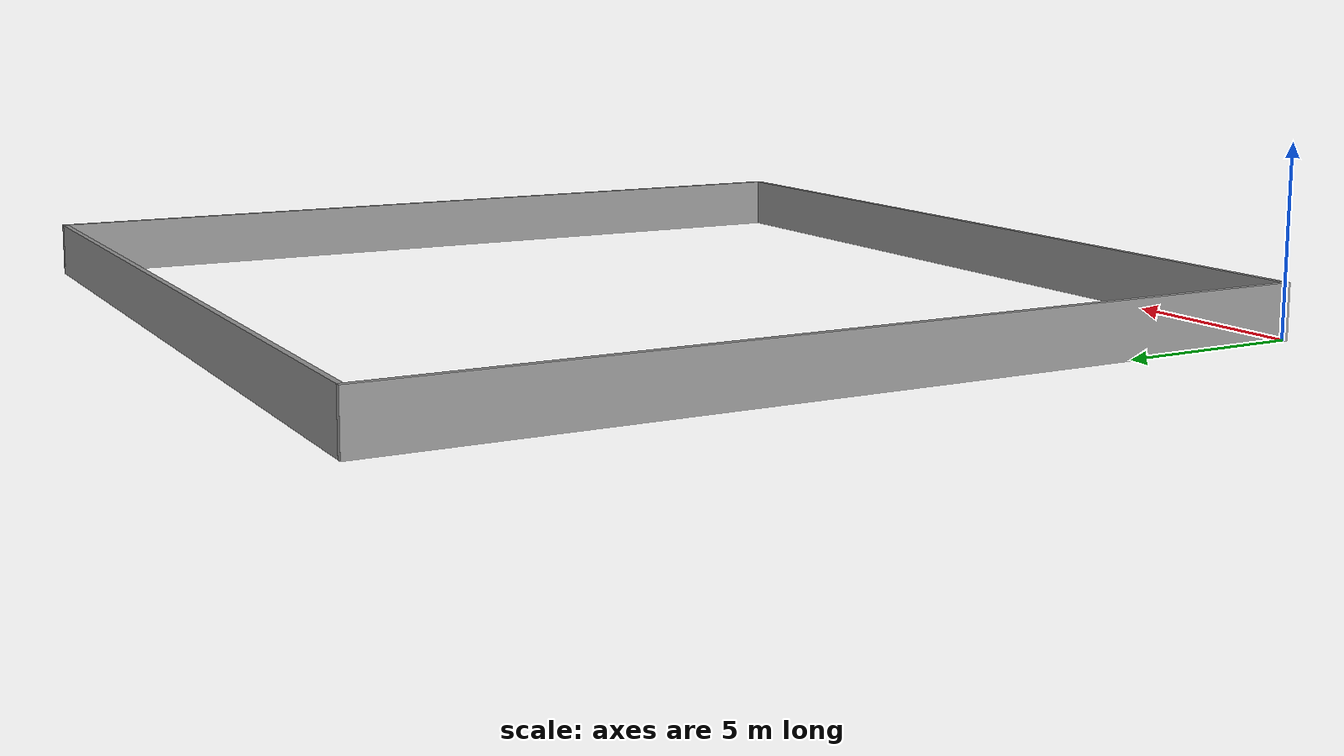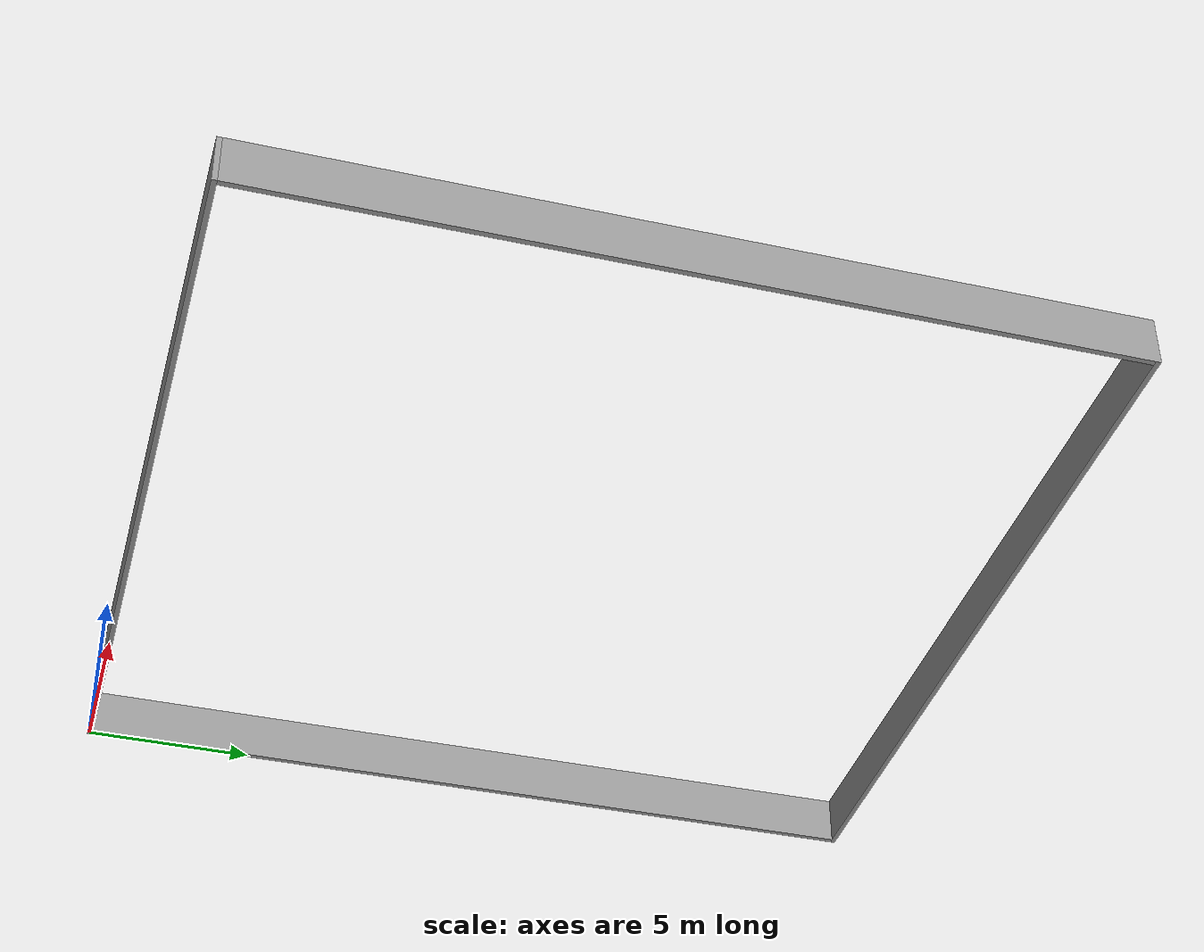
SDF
<?xml version='1.0'?>
<sdf version='1.6'>
  <model name='ArenaWalls'>
    <pose frame=''>12.425 12.425 0 0 -0 0</pose>
    <link name='Wall_20'>
      <collision name='Wall_20_Collision'>
        <geometry>
          <box>
            <size>25 0.15 1.5</size>
          </box>
        </geometry>
        <pose frame=''>0 0 0.75 0 -0 0</pose>
      </collision>
      <visual name='Wall_20_Visual'>
        <pose frame=''>0 0 0.75 0 -0 0</pose>
        <geometry>
          <box>
            <size>25 0.15 1.5</size>
          </box>
        </geometry>
        <material>
          <script>
            <uri>file://media/materials/scripts/gazebo.material</uri>
            <name>Gazebo/Grey</name>
          </script>
          <ambient>1 1 1 1</ambient>
        </material>
        <meta>
          <layer>0</layer>
        </meta>
      </visual>
      <pose frame=''>0 -12.425 0 0 -0 0</pose>
    </link>
    <link name='Wall_22'>
      <collision name='Wall_22_Collision'>
        <geometry>
          <box>
            <size>25 0.15 1.5</size>
          </box>
        </geometry>
        <pose frame=''>0 0 0.75 0 -0 0</pose>
      </collision>
      <visual name='Wall_22_Visual'>
        <pose frame=''>0 0 0.75 0 -0 0</pose>
        <geometry>
          <box>
            <size>25 0.15 1.5</size>
          </box>
        </geometry>
        <material>
          <script>
            <uri>file://media/materials/scripts/gazebo.material</uri>
            <name>Gazebo/Grey</name>
          </script>
          <ambient>1 1 1 1</ambient>
        </material>
        <meta>
          <layer>0</layer>
        </meta>
      </visual>
      <pose frame=''>-12.425 -0 0 0 -0 1.5708</pose>
    </link>
    <link name='Wall_27'>
      <collision name='Wall_27_Collision'>
        <geometry>
          <box>
            <size>25 0.15 1.5</size>
          </box>
        </geometry>
        <pose frame=''>0 0 0.75 0 -0 0</pose>
      </collision>
      <visual name='Wall_27_Visual'>
        <pose frame=''>0 0 0.75 0 -0 0</pose>
        <geometry>
          <box>
            <size>25 0.15 1.5</size>
          </box>
        </geometry>
        <material>
          <script>
            <uri>file://media/materials/scripts/gazebo.material</uri>
            <name>Gazebo/Grey</name>
          </script>
          <ambient>1 1 1 1</ambient>
        </material>
        <meta>
          <layer>0</layer>
        </meta>
      </visual>
      <pose frame=''>0 12.425 0 0 -0 0</pose>
    </link>
    <link name='Wall_29'>
      <collision name='Wall_29_Collision'>
        <geometry>
          <box>
            <size>25 0.15 1.5</size>
          </box>
        </geometry>
        <pose frame=''>0 0 0.75 0 -0 0</pose>
      </collision>
      <visual name='Wall_29_Visual'>
        <pose frame=''>0 0 0.75 0 -0 0</pose>
        <geometry>
          <box>
            <size>25 0.15 1.5</size>
          </box>
        </geometry>
        <material>
          <script>
            <uri>file://media/materials/scripts/gazebo.material</uri>
            <name>Gazebo/Grey</name>
          </script>
          <ambient>1 1 1 1</ambient>
        </material>
        <meta>
          <layer>0</layer>
        </meta>
      </visual>
      <pose frame=''>12.425 -0 0 0 -0 -1.5708</pose>
    </link>
    <static>1</static>
  </model>
</sdf>
